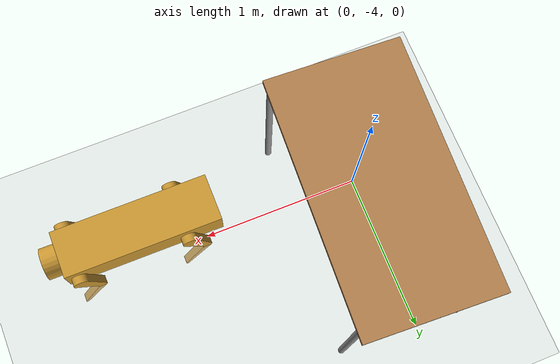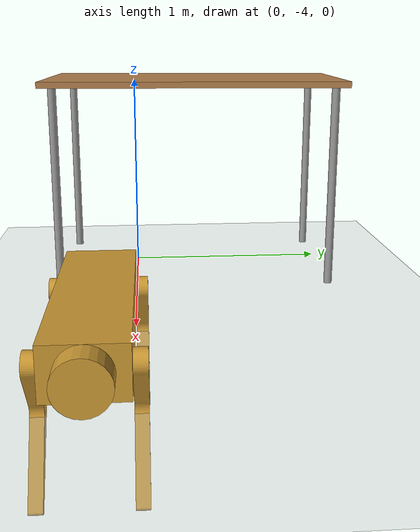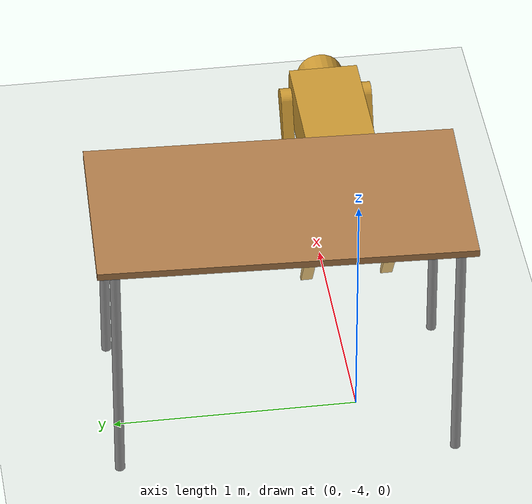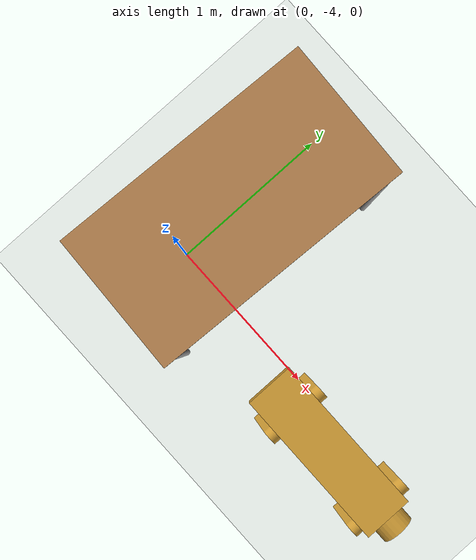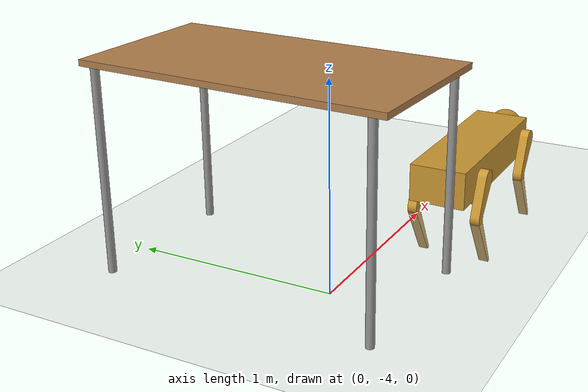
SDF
<sdf version="1.6">
 <world name="default">
  <model name="ground_plane">
   <static>1</static>
   <link name="link">
    <collision name="collision">
     <geometry><plane><normal>0 0 1</normal><size>100 100</size></plane></geometry>
     <surface><friction><ode><mu>100</mu><mu2>50</mu2></ode></friction></surface>
    </collision>
    <visual name="visual">
     <cast_shadows>0</cast_shadows>
     <geometry><plane><normal>0 0 1</normal><size>100 100</size></plane></geometry>
     <material>
      <script><uri>file://media/materials/scripts/gazebo.material</uri><name>Gazebo/Grey</name></script>
     </material>
    </visual>
   </link>
  </model>
  <model name="robodog">
   <link name="link_0">
    <pose>-0.058333 -0.016667 0.333318 0 -0 0</pose>
    <inertial>
     <mass>1</mass>
     <inertia>
      <ixx>0.166667</ixx>
      <ixy>0</ixy>
      <ixz>0</ixz>
      <iyy>0.166667</iyy>
      <iyz>0</iyz>
      <izz>0.166667</izz>
     </inertia>
    </inertial>
    <visual name="visual">
     <geometry><box><size>1 0.3 0.2</size></box></geometry>
     <material>
      <lighting>1</lighting>
      <script><uri>file://media/materials/scripts/gazebo.material</uri><name>Gazebo/Grey</name></script>
      <shader type="pixel"><normal_map>__default__</normal_map></shader>
      <ambient>0.8 0.6 0.2 1</ambient>
      <diffuse>0.6 0.6 0.6 1</diffuse>
      <specular>0.01 0.01 0.01 1</specular>
      <emissive>0 0 0 1</emissive>
     </material>
    </visual>
    <collision name="collision">
     <geometry><box><size>1 0.3 0.2</size></box></geometry>
     <surface>
      <friction>
       <ode><mu>1</mu><mu2>1</mu2><fdir1>0 0 0</fdir1><slip1>0</slip1><slip2>0</slip2></ode>
       <torsional>
        <coefficient>1</coefficient>
        <patch_radius>0</patch_radius>
        <surface_radius>0</surface_radius>
        <use_patch_radius>1</use_patch_radius>
        <ode><slip>0</slip></ode>
       </torsional>
      </friction>
      <bounce><restitution_coefficient>0</restitution_coefficient><threshold>1e+06</threshold></bounce>
      <contact>
       <collide_without_contact>0</collide_without_contact>
       <collide_without_contact_bitmask>1</collide_without_contact_bitmask>
       <collide_bitmask>1</collide_bitmask>
       <ode>
        <soft_cfm>0</soft_cfm>
        <soft_erp>0.2</soft_erp>
        <kp>1e+13</kp>
        <kd>1</kd>
        <max_vel>0.01</max_vel>
        <min_depth>0</min_depth>
       </ode>
       <bullet>
        <split_impulse>1</split_impulse>
        <split_impulse_penetration_threshold>-0.01</split_impulse_penetration_threshold>
        <soft_cfm>0</soft_cfm>
        <soft_erp>0.2</soft_erp>
        <kp>1e+13</kp>
        <kd>1</kd>
       </bullet>
      </contact>
     </surface>
    </collision>
   </link>
   <link name="link_4">
    <pose>-0.458333 -0.166667 -0.166682 1.57 -0 0</pose>
    <inertial>
     <mass>1</mass>
     <inertia>
      <ixx>0.166667</ixx>
      <ixy>0</ixy>
      <ixz>0</ixz>
      <iyy>0.166667</iyy>
      <iyz>0</iyz>
      <izz>0.166667</izz>
     </inertia>
    </inertial>
    <visual name="visual">
     <geometry>
      <mesh>
       <uri>/home/robond/workspace/catkin_ws/src/Go_Chase_It/my_robot/meshes/RoboLeg.STL</uri>
       <scale>0.01 0.01 0.01</scale>
      </mesh>
     </geometry>
     <material>
      <lighting>1</lighting>
      <script><uri>file://media/materials/scripts/gazebo.material</uri><name>Gazebo/Grey</name></script>
      <shader type="pixel"><normal_map>__default__</normal_map></shader>
      <ambient>0.8 0.6 0.2 1</ambient>
      <diffuse>0.6 0.6 0.6 1</diffuse>
      <specular>0.01 0.01 0.01 1</specular>
      <emissive>0 0 0 1</emissive>
     </material>
    </visual>
    <collision name="collision">
     <geometry>
      <mesh>
       <uri>/home/robond/workspace/catkin_ws/src/Go_Chase_It/my_robot/meshes/RoboLeg.STL</uri>
       <scale>0.01 0.01 0.01</scale>
      </mesh>
     </geometry>
     <surface>
      <friction>
       <ode><mu>1</mu><mu2>1</mu2><fdir1>0 0 0</fdir1><slip1>0</slip1><slip2>0</slip2></ode>
       <torsional>
        <coefficient>1</coefficient>
        <patch_radius>0</patch_radius>
        <surface_radius>0</surface_radius>
        <use_patch_radius>1</use_patch_radius>
        <ode><slip>0</slip></ode>
       </torsional>
      </friction>
      <bounce><restitution_coefficient>0</restitution_coefficient><threshold>1e+06</threshold></bounce>
      <contact>
       <collide_without_contact>0</collide_without_contact>
       <collide_without_contact_bitmask>1</collide_without_contact_bitmask>
       <collide_bitmask>1</collide_bitmask>
       <ode>
        <soft_cfm>0</soft_cfm>
        <soft_erp>0.2</soft_erp>
        <kp>1e+13</kp>
        <kd>1</kd>
        <max_vel>0.01</max_vel>
        <min_depth>0</min_depth>
       </ode>
       <bullet>
        <split_impulse>1</split_impulse>
        <split_impulse_penetration_threshold>-0.01</split_impulse_penetration_threshold>
        <soft_cfm>0</soft_cfm>
        <soft_erp>0.2</soft_erp>
        <kp>1e+13</kp>
        <kd>1</kd>
       </bullet>
      </contact>
     </surface>
    </collision>
   </link>
   <link name="link_4_clone">
    <pose>-0.458333 0.183333 -0.166682 1.57 -0 0</pose>
    <inertial>
     <mass>1</mass>
     <inertia>
      <ixx>0.166667</ixx>
      <ixy>0</ixy>
      <ixz>0</ixz>
      <iyy>0.166667</iyy>
      <iyz>0</iyz>
      <izz>0.166667</izz>
     </inertia>
    </inertial>
    <visual name="visual">
     <geometry>
      <mesh>
       <uri>/home/robond/workspace/catkin_ws/src/Go_Chase_It/my_robot/meshes/RoboLeg.STL</uri>
       <scale>0.01 0.01 0.01</scale>
      </mesh>
     </geometry>
     <material>
      <lighting>1</lighting>
      <script><uri>file://media/materials/scripts/gazebo.material</uri><name>Gazebo/Grey</name></script>
      <shader type="pixel"><normal_map>__default__</normal_map></shader>
      <ambient>0.8 0.6 0.2 1</ambient>
      <diffuse>0.6 0.6 0.6 1</diffuse>
      <specular>0.01 0.01 0.01 1</specular>
      <emissive>0 0 0 1</emissive>
     </material>
    </visual>
    <collision name="collision">
     <geometry>
      <mesh>
       <uri>/home/robond/workspace/catkin_ws/src/Go_Chase_It/my_robot/meshes/RoboLeg.STL</uri>
       <scale>0.01 0.01 0.01</scale>
      </mesh>
     </geometry>
     <surface>
      <friction>
       <ode><mu>1</mu><mu2>1</mu2><fdir1>0 0 0</fdir1><slip1>0</slip1><slip2>0</slip2></ode>
       <torsional>
        <coefficient>1</coefficient>
        <patch_radius>0</patch_radius>
        <surface_radius>0</surface_radius>
        <use_patch_radius>1</use_patch_radius>
        <ode><slip>0</slip></ode>
       </torsional>
      </friction>
      <bounce><restitution_coefficient>0</restitution_coefficient><threshold>1e+06</threshold></bounce>
      <contact>
       <collide_without_contact>0</collide_without_contact>
       <collide_without_contact_bitmask>1</collide_without_contact_bitmask>
       <collide_bitmask>1</collide_bitmask>
       <ode>
        <soft_cfm>0</soft_cfm>
        <soft_erp>0.2</soft_erp>
        <kp>1e+13</kp>
        <kd>1</kd>
        <max_vel>0.01</max_vel>
        <min_depth>0</min_depth>
       </ode>
       <bullet>
        <split_impulse>1</split_impulse>
        <split_impulse_penetration_threshold>-0.01</split_impulse_penetration_threshold>
        <soft_cfm>0</soft_cfm>
        <soft_erp>0.2</soft_erp>
        <kp>1e+13</kp>
        <kd>1</kd>
       </bullet>
      </contact>
     </surface>
    </collision>
   </link>
   <link name="link_4_clone_0">
    <pose>0.241667 0.183333 -0.166682 1.57 -0 0</pose>
    <inertial>
     <mass>1</mass>
     <inertia>
      <ixx>0.166667</ixx>
      <ixy>0</ixy>
      <ixz>0</ixz>
      <iyy>0.166667</iyy>
      <iyz>0</iyz>
      <izz>0.166667</izz>
     </inertia>
    </inertial>
    <visual name="visual">
     <geometry>
      <mesh>
       <uri>/home/robond/workspace/catkin_ws/src/Go_Chase_It/my_robot/meshes/RoboLeg.STL</uri>
       <scale>0.01 0.01 0.01</scale>
      </mesh>
     </geometry>
     <material>
      <lighting>1</lighting>
      <script><uri>file://media/materials/scripts/gazebo.material</uri><name>Gazebo/Grey</name></script>
      <shader type="pixel"><normal_map>__default__</normal_map></shader>
      <ambient>0.8 0.6 0.2 1</ambient>
      <diffuse>0.6 0.6 0.6 1</diffuse>
      <specular>0.01 0.01 0.01 1</specular>
      <emissive>0 0 0 1</emissive>
     </material>
    </visual>
    <collision name="collision">
     <geometry>
      <mesh>
       <uri>/home/robond/workspace/catkin_ws/src/Go_Chase_It/my_robot/meshes/RoboLeg.STL</uri>
       <scale>0.01 0.01 0.01</scale>
      </mesh>
     </geometry>
     <surface>
      <friction>
       <ode><mu>1</mu><mu2>1</mu2><fdir1>0 0 0</fdir1><slip1>0</slip1><slip2>0</slip2></ode>
       <torsional>
        <coefficient>1</coefficient>
        <patch_radius>0</patch_radius>
        <surface_radius>0</surface_radius>
        <use_patch_radius>1</use_patch_radius>
        <ode><slip>0</slip></ode>
       </torsional>
      </friction>
      <bounce><restitution_coefficient>0</restitution_coefficient><threshold>1e+06</threshold></bounce>
      <contact>
       <collide_without_contact>0</collide_without_contact>
       <collide_without_contact_bitmask>1</collide_without_contact_bitmask>
       <collide_bitmask>1</collide_bitmask>
       <ode>
        <soft_cfm>0</soft_cfm>
        <soft_erp>0.2</soft_erp>
        <kp>1e+13</kp>
        <kd>1</kd>
        <max_vel>0.01</max_vel>
        <min_depth>0</min_depth>
       </ode>
       <bullet>
        <split_impulse>1</split_impulse>
        <split_impulse_penetration_threshold>-0.01</split_impulse_penetration_threshold>
        <soft_cfm>0</soft_cfm>
        <soft_erp>0.2</soft_erp>
        <kp>1e+13</kp>
        <kd>1</kd>
       </bullet>
      </contact>
     </surface>
    </collision>
   </link>
   <link name="link_4_clone_1">
    <pose>0.241667 -0.166667 -0.166682 1.57 -0 0</pose>
    <inertial>
     <mass>1</mass>
     <inertia>
      <ixx>0.166667</ixx>
      <ixy>0</ixy>
      <ixz>0</ixz>
      <iyy>0.166667</iyy>
      <iyz>0</iyz>
      <izz>0.166667</izz>
     </inertia>
    </inertial>
    <visual name="visual">
     <geometry>
      <mesh>
       <uri>/home/robond/workspace/catkin_ws/src/Go_Chase_It/my_robot/meshes/RoboLeg.STL</uri>
       <scale>0.01 0.01 0.01</scale>
      </mesh>
     </geometry>
     <material>
      <lighting>1</lighting>
      <script><uri>file://media/materials/scripts/gazebo.material</uri><name>Gazebo/Grey</name></script>
      <shader type="pixel"><normal_map>__default__</normal_map></shader>
      <ambient>0.8 0.6 0.2 1</ambient>
      <diffuse>0.6 0.6 0.6 1</diffuse>
      <specular>0.01 0.01 0.01 1</specular>
      <emissive>0 0 0 1</emissive>
     </material>
    </visual>
    <collision name="collision">
     <geometry>
      <mesh>
       <uri>/home/robond/workspace/catkin_ws/src/Go_Chase_It/my_robot/meshes/RoboLeg.STL</uri>
       <scale>0.01 0.01 0.01</scale>
      </mesh>
     </geometry>
     <surface>
      <friction>
       <ode><mu>1</mu><mu2>1</mu2><fdir1>0 0 0</fdir1><slip1>0</slip1><slip2>0</slip2></ode>
       <torsional>
        <coefficient>1</coefficient>
        <patch_radius>0</patch_radius>
        <surface_radius>0</surface_radius>
        <use_patch_radius>1</use_patch_radius>
        <ode><slip>0</slip></ode>
       </torsional>
      </friction>
      <bounce><restitution_coefficient>0</restitution_coefficient><threshold>1e+06</threshold></bounce>
      <contact>
       <collide_without_contact>0</collide_without_contact>
       <collide_without_contact_bitmask>1</collide_without_contact_bitmask>
       <collide_bitmask>1</collide_bitmask>
       <ode>
        <soft_cfm>0</soft_cfm>
        <soft_erp>0.2</soft_erp>
        <kp>1e+13</kp>
        <kd>1</kd>
        <max_vel>0.01</max_vel>
        <min_depth>0</min_depth>
       </ode>
       <bullet>
        <split_impulse>1</split_impulse>
        <split_impulse_penetration_threshold>-0.01</split_impulse_penetration_threshold>
        <soft_cfm>0</soft_cfm>
        <soft_erp>0.2</soft_erp>
        <kp>1e+13</kp>
        <kd>1</kd>
       </bullet>
      </contact>
     </surface>
    </collision>
   </link>
   <link name="link_5">
    <pose>0.491667 -0.016667 0.333318 -3.14159 1.57 -3.14159</pose>
    <inertial>
     <mass>1</mass>
     <inertia><ixx>0.145833</ixx><ixy>0</ixy><ixz>0</ixz><iyy>0.145833</iyy><iyz>0</iyz><izz>0.125</izz></inertia>
    </inertial>
    <visual name="visual">
     <geometry><cylinder><radius>0.1</radius><length>0.1</length></cylinder></geometry>
     <material>
      <lighting>1</lighting>
      <script><uri>file://media/materials/scripts/gazebo.material</uri><name>Gazebo/Grey</name></script>
      <shader type="pixel"><normal_map>__default__</normal_map></shader>
      <ambient>0.8 0.6 0.2 1</ambient>
      <diffuse>0.6 0.6 0.6 1</diffuse>
      <specular>0.01 0.01 0.01 1</specular>
      <emissive>0 0 0 1</emissive>
     </material>
    </visual>
    <collision name="collision">
     <geometry><cylinder><radius>0.1</radius><length>0.1</length></cylinder></geometry>
     <surface>
      <friction>
       <ode><mu>1</mu><mu2>1</mu2><fdir1>0 0 0</fdir1><slip1>0</slip1><slip2>0</slip2></ode>
       <torsional>
        <coefficient>1</coefficient>
        <patch_radius>0</patch_radius>
        <surface_radius>0</surface_radius>
        <use_patch_radius>1</use_patch_radius>
        <ode><slip>0</slip></ode>
       </torsional>
      </friction>
      <bounce><restitution_coefficient>0</restitution_coefficient><threshold>1e+06</threshold></bounce>
      <contact>
       <collide_without_contact>0</collide_without_contact>
       <collide_without_contact_bitmask>1</collide_without_contact_bitmask>
       <collide_bitmask>1</collide_bitmask>
       <ode>
        <soft_cfm>0</soft_cfm>
        <soft_erp>0.2</soft_erp>
        <kp>1e+13</kp>
        <kd>1</kd>
        <max_vel>0.01</max_vel>
        <min_depth>0</min_depth>
       </ode>
       <bullet>
        <split_impulse>1</split_impulse>
        <split_impulse_penetration_threshold>-0.01</split_impulse_penetration_threshold>
        <soft_cfm>0</soft_cfm>
        <soft_erp>0.2</soft_erp>
        <kp>1e+13</kp>
        <kd>1</kd>
       </bullet>
      </contact>
     </surface>
    </collision>
   </link>
   <joint name="link_0_JOINT_0" type="revolute">
    <parent>link_0</parent>
    <child>link_4</child>
    <pose>0.12 0.49 0.025 0 -0 0</pose>
    <axis>
     <xyz>0 0 1</xyz>
     <use_parent_model_frame>0</use_parent_model_frame>
     <limit>
      <lower>-1.79769e+308</lower>
      <upper>1.79769e+308</upper>
      <effort>-1</effort>
      <velocity>-1</velocity>
     </limit>
     <dynamics>
      <spring_reference>0</spring_reference>
      <spring_stiffness>0</spring_stiffness>
      <damping>0</damping>
      <friction>0</friction>
     </dynamics>
    </axis>
    <physics>
     <ode><limit><cfm>0</cfm><erp>0.2</erp></limit><suspension><cfm>0</cfm><erp>0.2</erp></suspension></ode>
    </physics>
   </joint>
   <joint name="link_0_JOINT_1" type="revolute">
    <parent>link_0</parent>
    <child>link_4_clone_1</child>
    <pose>0.12 0.49 0.025 0 -0 0</pose>
    <axis>
     <xyz>0 0 1</xyz>
     <use_parent_model_frame>0</use_parent_model_frame>
     <limit>
      <lower>-1.79769e+308</lower>
      <upper>1.79769e+308</upper>
      <effort>-1</effort>
      <velocity>-1</velocity>
     </limit>
     <dynamics>
      <spring_reference>0</spring_reference>
      <spring_stiffness>0</spring_stiffness>
      <damping>0</damping>
      <friction>0</friction>
     </dynamics>
    </axis>
    <physics>
     <ode><limit><cfm>0</cfm><erp>0.2</erp></limit><suspension><cfm>0</cfm><erp>0.2</erp></suspension></ode>
    </physics>
   </joint>
   <joint name="link_0_JOINT_2" type="revolute">
    <parent>link_0</parent>
    <child>link_4_clone_0</child>
    <pose>0.12 0.49 0.025 0 -0 0</pose>
    <axis>
     <xyz>0 0 1</xyz>
     <use_parent_model_frame>0</use_parent_model_frame>
     <limit>
      <lower>-1.79769e+308</lower>
      <upper>1.79769e+308</upper>
      <effort>-1</effort>
      <velocity>-1</velocity>
     </limit>
     <dynamics>
      <spring_reference>0</spring_reference>
      <spring_stiffness>0</spring_stiffness>
      <damping>0</damping>
      <friction>0</friction>
     </dynamics>
    </axis>
    <physics>
     <ode><limit><cfm>0</cfm><erp>0.2</erp></limit><suspension><cfm>0</cfm><erp>0.2</erp></suspension></ode>
    </physics>
   </joint>
   <joint name="link_0_JOINT_3" type="revolute">
    <parent>link_0</parent>
    <child>link_4_clone</child>
    <pose>0.12 0.49 0.025 0 -0 0</pose>
    <axis>
     <xyz>0 0 1</xyz>
     <use_parent_model_frame>0</use_parent_model_frame>
     <limit>
      <lower>-1.79769e+308</lower>
      <upper>1.79769e+308</upper>
      <effort>-1</effort>
      <velocity>-1</velocity>
     </limit>
     <dynamics>
      <spring_reference>0</spring_reference>
      <spring_stiffness>0</spring_stiffness>
      <damping>0</damping>
      <friction>0</friction>
     </dynamics>
    </axis>
    <physics>
     <ode><limit><cfm>0</cfm><erp>0.2</erp></limit><suspension><cfm>0</cfm><erp>0.2</erp></suspension></ode>
    </physics>
   </joint>
   <joint name="link_0_JOINT_4" type="revolute">
    <parent>link_0</parent>
    <child>link_5</child>
    <axis>
     <xyz>0 0 1</xyz>
     <use_parent_model_frame>0</use_parent_model_frame>
     <limit>
      <lower>-1.79769e+308</lower>
      <upper>1.79769e+308</upper>
      <effort>-1</effort>
      <velocity>-1</velocity>
     </limit>
     <dynamics>
      <spring_reference>0</spring_reference>
      <spring_stiffness>0</spring_stiffness>
      <damping>0</damping>
      <friction>0</friction>
     </dynamics>
    </axis>
    <physics>
     <ode><limit><cfm>0</cfm><erp>0.2</erp></limit><suspension><cfm>0</cfm><erp>0.2</erp></suspension></ode>
    </physics>
   </joint>
   <static>0</static>
   <pose>1.44935 -4.13059 -0.117538 0 0 -0.002167</pose>
  </model>
  <model name="table">
   <static>1</static>
   <link name="link">
    <collision name="surface">
     <pose>0 0 1 0 -0 0</pose>
     <geometry><box><size>1.5 0.8 0.03</size></box></geometry>
     <surface><friction><ode><mu>0.6</mu><mu2>0.6</mu2></ode></friction></surface>
    </collision>
    <visual name="visual1">
     <pose>0 0 1 0 -0 0</pose>
     <geometry><box><size>1.5 0.8 0.03</size></box></geometry>
     <material>
      <script><uri>file://media/materials/scripts/gazebo.material</uri><name>Gazebo/Wood</name></script>
     </material>
    </visual>
    <collision name="front_left_leg">
     <pose>0.68 0.38 0.5 0 -0 0</pose>
     <geometry><cylinder><radius>0.02</radius><length>1</length></cylinder></geometry>
    </collision>
    <visual name="front_left_leg">
     <pose>0.68 0.38 0.5 0 -0 0</pose>
     <geometry><cylinder><radius>0.02</radius><length>1</length></cylinder></geometry>
     <material>
      <script><uri>file://media/materials/scripts/gazebo.material</uri><name>Gazebo/Grey</name></script>
     </material>
    </visual>
    <collision name="front_right_leg">
     <pose>0.68 -0.38 0.5 0 -0 0</pose>
     <geometry><cylinder><radius>0.02</radius><length>1</length></cylinder></geometry>
    </collision>
    <visual name="front_right_leg">
     <pose>0.68 -0.38 0.5 0 -0 0</pose>
     <geometry><cylinder><radius>0.02</radius><length>1</length></cylinder></geometry>
     <material>
      <script><uri>file://media/materials/scripts/gazebo.material</uri><name>Gazebo/Grey</name></script>
     </material>
    </visual>
    <collision name="back_right_leg">
     <pose>-0.68 -0.38 0.5 0 -0 0</pose>
     <geometry><cylinder><radius>0.02</radius><length>1</length></cylinder></geometry>
    </collision>
    <visual name="back_right_leg">
     <pose>-0.68 -0.38 0.5 0 -0 0</pose>
     <geometry><cylinder><radius>0.02</radius><length>1</length></cylinder></geometry>
     <material>
      <script><uri>file://media/materials/scripts/gazebo.material</uri><name>Gazebo/Grey</name></script>
     </material>
    </visual>
    <collision name="back_left_leg">
     <pose>-0.68 0.38 0.5 0 -0 0</pose>
     <geometry><cylinder><radius>0.02</radius><length>1</length></cylinder></geometry>
    </collision>
    <visual name="back_left_leg">
     <pose>-0.68 0.38 0.5 0 -0 0</pose>
     <geometry><cylinder><radius>0.02</radius><length>1</length></cylinder></geometry>
     <material>
      <script><uri>file://media/materials/scripts/gazebo.material</uri><name>Gazebo/Grey</name></script>
     </material>
    </visual>
   </link>
   <pose>0.082042 -3.69089 0 0 -0 1.52977</pose>
  </model>
 </world>
</sdf>
